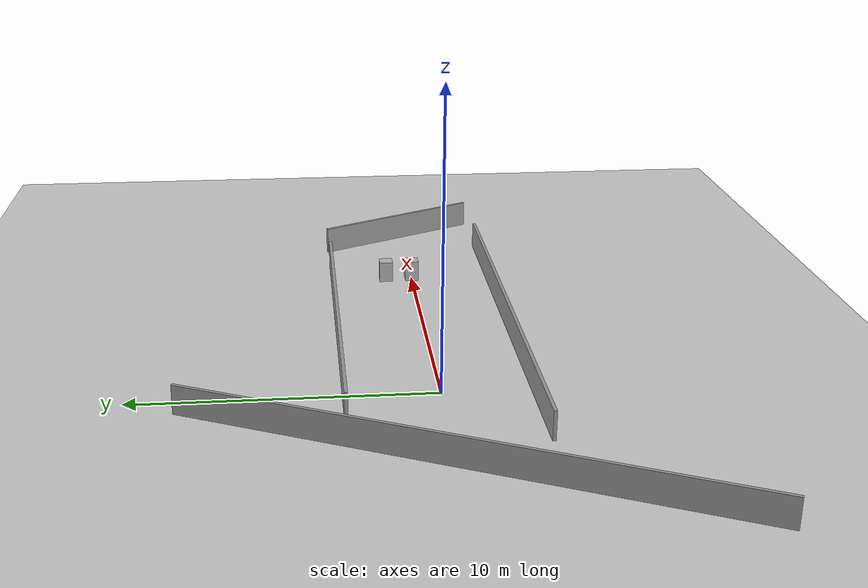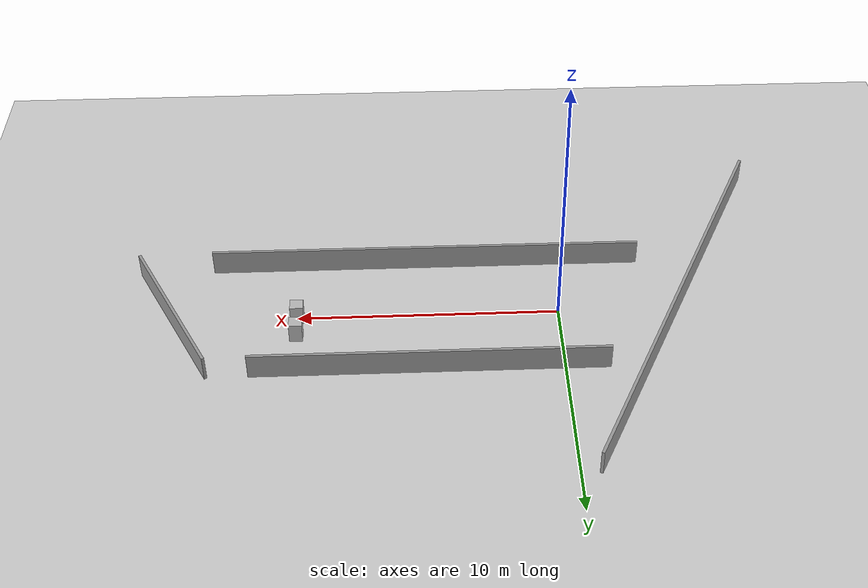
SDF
<sdf version="1.6">
 <world name="animated_box_world">
  <model name="ground_plane">
   <static>1</static>
   <link name="link">
    <collision name="collision">
     <geometry><plane><normal>0 0 1</normal><size>100 100</size></plane></geometry>
     <surface>
      <contact><collide_bitmask>65535</collide_bitmask></contact>
      <friction><ode><mu>100</mu><mu2>50</mu2></ode></friction>
     </surface>
    </collision>
    <visual name="visual">
     <cast_shadows>0</cast_shadows>
     <geometry><plane><normal>0 0 1</normal><size>100 100</size></plane></geometry>
     <material>
      <script><uri>file://media/materials/scripts/gazebo.material</uri><name>Gazebo/Grey</name></script>
     </material>
    </visual>
   </link>
  </model>
  <light name="sun" type="directional">
   <pose>0 0 10 0 -0 0</pose>
   <diffuse>0.8 0.8 0.8 1</diffuse>
   <specular>0.2 0.2 0.2 1</specular>
   <attenuation>
    <range>1000</range>
    <constant>0.9</constant>
    <linear>0.01</linear>
    <quadratic>0.001</quadratic>
   </attenuation>
   <direction>-0.5 0.1 -0.9</direction>
  </light>
  <model name="box1">
   <pose>10 0 0 0 -0 0</pose>
   <link name="link">
    <collision name="collision"><geometry><box><size>0.5 0.5 1.5</size></box></geometry></collision>
    <visual name="visual"><geometry><box><size>0.5 0.5 1.5</size></box></geometry></visual>
    <inertial>
     <inertia><ixx>1</ixx><ixy>0</ixy><ixz>0</ixz><iyy>1</iyy><iyz>0</iyz><izz>1</izz></inertia>
     <mass>1</mass>
    </inertial>
   </link>
   <plugin name="push_animate1" filename="libanimated_box1.so"/>
  </model>
  <model name="box2">
   <pose>10 1 0 0 -0 0</pose>
   <link name="link">
    <collision name="collision"><geometry><box><size>0.5 0.5 1.5</size></box></geometry></collision>
    <visual name="visual"><geometry><box><size>0.5 0.5 1.5</size></box></geometry></visual>
    <inertial>
     <inertia><ixx>1</ixx><ixy>0</ixy><ixz>0</ixz><iyy>1</iyy><iyz>0</iyz><izz>1</izz></inertia>
     <mass>1</mass>
    </inertial>
   </link>
   <plugin name="push_animate2" filename="libanimated_box2.so"/>
  </model>
  <gravity>0 0 -9.8</gravity>
  <magnetic_field>6e-06 2.3e-05 -4.2e-05</magnetic_field>
  <atmosphere type="adiabatic"/>
  <physics name="default_physics" default="0" type="ode">
   <max_step_size>0.001</max_step_size>
   <real_time_factor>1</real_time_factor>
   <real_time_update_rate>1000</real_time_update_rate>
  </physics>
  <scene><ambient>0.4 0.4 0.4 1</ambient><background>0.7 0.7 0.7 1</background><shadows>1</shadows></scene>
  <audio><device>default</device></audio>
  <spherical_coordinates>
   <surface_model>EARTH_WGS84</surface_model>
   <latitude_deg>0</latitude_deg>
   <longitude_deg>0</longitude_deg>
   <elevation>0</elevation>
   <heading_deg>0</heading_deg>
  </spherical_coordinates>
  <model name="wall1">
   <link name="link_0">
    <inertial>
     <mass>1.51274</mass>
     <inertia><ixx>0.127682</ixx><ixy>0</ixy><ixz>0</ixz><iyy>22.5628</iyy><iyz>0</iyz><izz>22.4383</izz></inertia>
    </inertial>
    <pose>-1e-06 -0 0 0 -0 0</pose>
    <visual name="visual">
     <geometry><box><size>13.341 0.113382 1</size></box></geometry>
     <material>
      <lighting>1</lighting>
      <script><uri>file://media/materials/scripts/gazebo.material</uri><name>Gazebo/Grey</name></script>
     </material>
    </visual>
    <collision name="collision">
     <geometry><box><size>13.341 0.113382 1</size></box></geometry>
     <surface>
      <friction>
       <ode><mu>1</mu><mu2>1</mu2><fdir1>0 0 0</fdir1><slip1>0</slip1><slip2>0</slip2></ode>
       <torsional>
        <coefficient>1</coefficient>
        <patch_radius>0</patch_radius>
        <surface_radius>0</surface_radius>
        <use_patch_radius>1</use_patch_radius>
        <ode><slip>0</slip></ode>
       </torsional>
      </friction>
      <bounce><restitution_coefficient>0</restitution_coefficient><threshold>1e+06</threshold></bounce>
      <contact>
       <collide_without_contact>0</collide_without_contact>
       <collide_without_contact_bitmask>1</collide_without_contact_bitmask>
       <collide_bitmask>1</collide_bitmask>
       <ode>
        <soft_cfm>0</soft_cfm>
        <soft_erp>0.2</soft_erp>
        <kp>1e+13</kp>
        <kd>1</kd>
        <max_vel>0.01</max_vel>
        <min_depth>0</min_depth>
       </ode>
       <bullet>
        <split_impulse>1</split_impulse>
        <split_impulse_penetration_threshold>-0.01</split_impulse_penetration_threshold>
        <soft_cfm>0</soft_cfm>
        <soft_erp>0.2</soft_erp>
        <kp>1e+13</kp>
        <kd>1</kd>
       </bullet>
      </contact>
     </surface>
    </collision>
   </link>
   <static>0</static>
   <pose>5.00105 3.08984 0.5 0 -0 0</pose>
  </model>
  <model name="wall1_clone">
   <link name="link_0">
    <inertial>
     <mass>1.51274</mass>
     <inertia><ixx>0.127682</ixx><ixy>0</ixy><ixz>0</ixz><iyy>22.5628</iyy><iyz>0</iyz><izz>22.4383</izz></inertia>
    </inertial>
    <pose>-1e-06 -0 0 0 -0 0</pose>
    <visual name="visual">
     <geometry><box><size>16.782 0.113382 1</size></box></geometry>
     <material>
      <lighting>1</lighting>
      <script><uri>file://media/materials/scripts/gazebo.material</uri><name>Gazebo/Grey</name></script>
     </material>
    </visual>
    <collision name="collision">
     <geometry><box><size>16.782 0.113382 1</size></box></geometry>
     <surface>
      <friction>
       <ode><mu>1</mu><mu2>1</mu2><fdir1>0 0 0</fdir1><slip1>0</slip1><slip2>0</slip2></ode>
       <torsional>
        <coefficient>1</coefficient>
        <patch_radius>0</patch_radius>
        <surface_radius>0</surface_radius>
        <use_patch_radius>1</use_patch_radius>
        <ode><slip>0</slip></ode>
       </torsional>
      </friction>
      <bounce><restitution_coefficient>0</restitution_coefficient><threshold>1e+06</threshold></bounce>
      <contact>
       <collide_without_contact>0</collide_without_contact>
       <collide_without_contact_bitmask>1</collide_without_contact_bitmask>
       <collide_bitmask>1</collide_bitmask>
       <ode>
        <soft_cfm>0</soft_cfm>
        <soft_erp>0.2</soft_erp>
        <kp>1e+13</kp>
        <kd>1</kd>
        <max_vel>0.01</max_vel>
        <min_depth>0</min_depth>
       </ode>
       <bullet>
        <split_impulse>1</split_impulse>
        <split_impulse_penetration_threshold>-0.01</split_impulse_penetration_threshold>
        <soft_cfm>0</soft_cfm>
        <soft_erp>0.2</soft_erp>
        <kp>1e+13</kp>
        <kd>1</kd>
       </bullet>
      </contact>
     </surface>
    </collision>
   </link>
   <static>0</static>
   <pose>5.01798 -2.95084 0.5 0 -0 0</pose>
  </model>
  <model name="wall1_clone_0">
   <link name="link_0">
    <inertial>
     <mass>1.51274</mass>
     <inertia><ixx>0.127682</ixx><ixy>0</ixy><ixz>0</ixz><iyy>22.5628</iyy><iyz>0</iyz><izz>22.4383</izz></inertia>
    </inertial>
    <pose>-1e-06 -0 0 0 -0 0</pose>
    <visual name="visual">
     <geometry><box><size>18.4219 0.113382 1</size></box></geometry>
     <material>
      <lighting>1</lighting>
      <script><uri>file://media/materials/scripts/gazebo.material</uri><name>Gazebo/Grey</name></script>
     </material>
    </visual>
    <collision name="collision">
     <geometry><box><size>18.4219 0.113382 1</size></box></geometry>
     <surface>
      <friction>
       <ode><mu>1</mu><mu2>1</mu2><fdir1>0 0 0</fdir1><slip1>0</slip1><slip2>0</slip2></ode>
       <torsional>
        <coefficient>1</coefficient>
        <patch_radius>0</patch_radius>
        <surface_radius>0</surface_radius>
        <use_patch_radius>1</use_patch_radius>
        <ode><slip>0</slip></ode>
       </torsional>
      </friction>
      <bounce><restitution_coefficient>0</restitution_coefficient><threshold>1e+06</threshold></bounce>
      <contact>
       <collide_without_contact>0</collide_without_contact>
       <collide_without_contact_bitmask>1</collide_without_contact_bitmask>
       <collide_bitmask>1</collide_bitmask>
       <ode>
        <soft_cfm>0</soft_cfm>
        <soft_erp>0.2</soft_erp>
        <kp>1e+13</kp>
        <kd>1</kd>
        <max_vel>0.01</max_vel>
        <min_depth>0</min_depth>
       </ode>
       <bullet>
        <split_impulse>1</split_impulse>
        <split_impulse_penetration_threshold>-0.01</split_impulse_penetration_threshold>
        <soft_cfm>0</soft_cfm>
        <soft_erp>0.2</soft_erp>
        <kp>1e+13</kp>
        <kd>1</kd>
       </bullet>
      </contact>
     </surface>
    </collision>
   </link>
   <static>0</static>
   <pose>-4.6018 0.014276 0.5 0 -0 1.13207</pose>
  </model>
  <model name="wall1_clone_0_clone">
   <link name="link_0">
    <inertial>
     <mass>1.51274</mass>
     <inertia><ixx>0.127682</ixx><ixy>0</ixy><ixz>0</ixz><iyy>22.5628</iyy><iyz>0</iyz><izz>22.4383</izz></inertia>
    </inertial>
    <pose>-1e-06 -0 0 0 -0 0</pose>
    <visual name="visual">
     <geometry><box><size>6.76305 0.113382 1</size></box></geometry>
     <material>
      <lighting>1</lighting>
      <script><uri>file://media/materials/scripts/gazebo.material</uri><name>Gazebo/Grey</name></script>
     </material>
    </visual>
    <collision name="collision">
     <geometry><box><size>6.76305 0.113382 1</size></box></geometry>
     <surface>
      <friction>
       <ode><mu>1</mu><mu2>1</mu2><fdir1>0 0 0</fdir1><slip1>0</slip1><slip2>0</slip2></ode>
       <torsional>
        <coefficient>1</coefficient>
        <patch_radius>0</patch_radius>
        <surface_radius>0</surface_radius>
        <use_patch_radius>1</use_patch_radius>
        <ode><slip>0</slip></ode>
       </torsional>
      </friction>
      <bounce><restitution_coefficient>0</restitution_coefficient><threshold>1e+06</threshold></bounce>
      <contact>
       <collide_without_contact>0</collide_without_contact>
       <collide_without_contact_bitmask>1</collide_without_contact_bitmask>
       <collide_bitmask>1</collide_bitmask>
       <ode>
        <soft_cfm>0</soft_cfm>
        <soft_erp>0.2</soft_erp>
        <kp>1e+13</kp>
        <kd>1</kd>
        <max_vel>0.01</max_vel>
        <min_depth>0</min_depth>
       </ode>
       <bullet>
        <split_impulse>1</split_impulse>
        <split_impulse_penetration_threshold>-0.01</split_impulse_penetration_threshold>
        <soft_cfm>0</soft_cfm>
        <soft_erp>0.2</soft_erp>
        <kp>1e+13</kp>
        <kd>1</kd>
       </bullet>
      </contact>
     </surface>
    </collision>
   </link>
   <static>0</static>
   <pose>14.7163 0.145004 0.5 0 -0 2.03565</pose>
  </model>
 </world>
</sdf>
